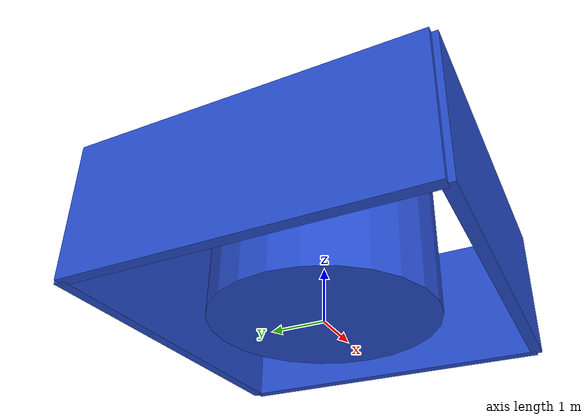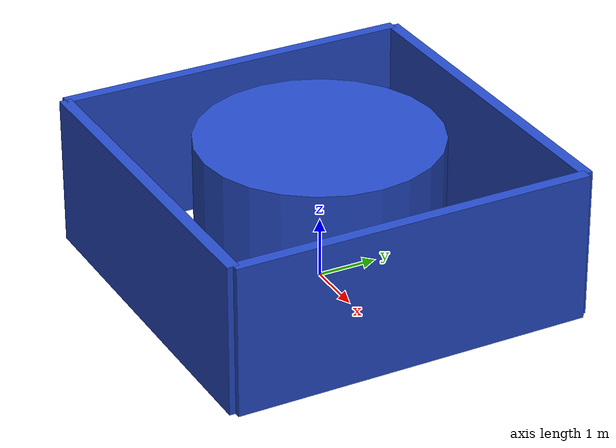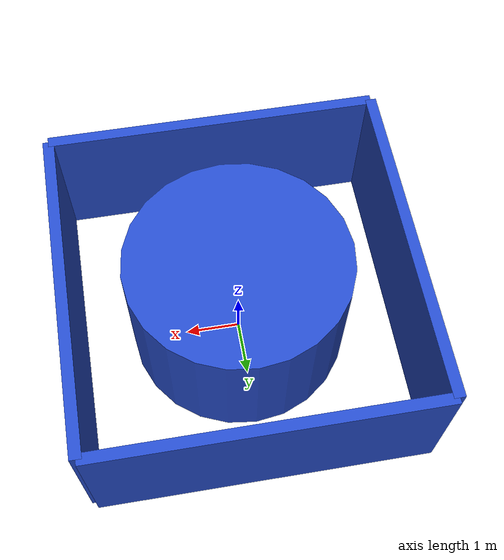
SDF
<?xml version='1.0'?>
<sdf version='1.4'>
  <model name="plan_test1">
    <static>1</static>
    <link name ="west_wall">
      <visual name="west_wall">
	<pose>-3 0 1.25 0 -0 0</pose>
        <geometry>
          <box>
            <size>0.2 6 2.5</size>
          </box>
        </geometry>
        <material>
          <script>
            <uri>file://media/materials/scripts/gazebo.material</uri>
            <name>Gazebo/Blue</name>
          </script>
        </material>
      </visual>
      <collision name='west_wall'>
        <geometry>
          <box>
	    <size>0.2 6 2.5</size>
          </box>
        </geometry>
        <pose>-3.0 0 1.25 0 -0 0</pose>
      </collision>
     </link>

     <link name ="east_wall">
      <visual name="east_wall">
	<pose>3.0 0 1.25 0 -0 0</pose>
        <geometry>
          <box>
            <size>0.2 6 2.5</size>
          </box>
        </geometry>
        <material>
          <script>
            <uri>file://media/materials/scripts/gazebo.material</uri>
            <name>Gazebo/Blue</name>
          </script>
        </material>
      </visual>
      <collision name='east_wall'>
        <geometry>
          <box>
	    <size>0.2 6 2.5</size>
          </box>
        </geometry>
        <pose>3.0 0 1.25 0 -0 0</pose>
      </collision>
     </link>

     <link name ="north_wall">
      <visual name="north_wall">
	<pose>0 3.0 1.25 0 -0 0</pose>
        <geometry>
          <box>
            <size>6 0.2 2.5</size>
          </box>
        </geometry>
        <material>
          <script>
            <uri>file://media/materials/scripts/gazebo.material</uri>
            <name>Gazebo/Blue</name>
          </script>
        </material>
      </visual>
      <collision name='north_wall'>
        <geometry>
          <box>
	    <size>6 0.2 2.5</size>
          </box>
        </geometry>
        <pose>0 3.0 1.25 0 -0 0</pose>
      </collision>
     </link>

     <link name ="south_wall">
      <visual name="south_wall">
	<pose>0 -3.0 1.25 0 -0 0</pose>
        <geometry>
          <box>
            <size>6 0.2 2.5</size>
          </box>
        </geometry>
        <material>
          <script>
            <uri>file://media/materials/scripts/gazebo.material</uri>
            <name>Gazebo/Blue</name>
          </script>
        </material>
      </visual>
      <collision name='south_wall'>
        <geometry>
          <box>
	    <size>6 0.2 2.5</size>
          </box>
        </geometry>
        <pose>0 -3.0 1.25 0 -0 0</pose>
      </collision>
     </link>

     <link name ="obstacle">
      <visual name="obstacle">
	<pose>0 0 1.25 0 -0 0</pose>
        <geometry>
           <cylinder>
	    <radius>2.0</radius>
	    <length>2.5</length>
	  </cylinder>
        </geometry>
        <material>
          <script>
            <uri>file://media/materials/scripts/gazebo.material</uri>
            <name>Gazebo/Blue</name>
          </script>
        </material>
      </visual>
      <collision name='obstacle'>
        <geometry>
           <cylinder>
	    <radius>2.0</radius>
	    <length>2.5</length>
	  </cylinder>
        </geometry>
        <pose>0 0 1.25 0 -0 0</pose>
      </collision>
     </link>

  </model>
</sdf>
